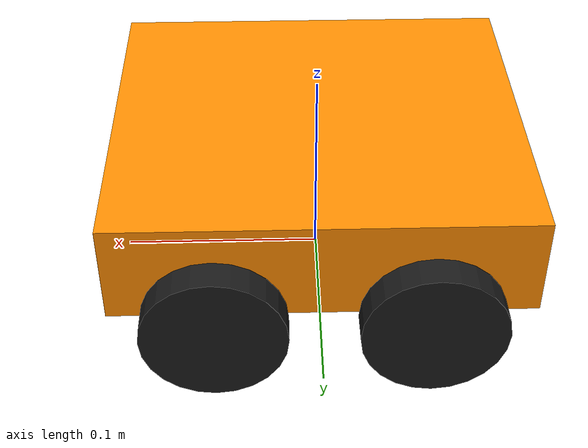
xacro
<?xml version="1.0"?>
<robot xmlns:xacro="http://www.ros.org/wiki/xacro" name="epmc_sample_bot">

    <xacro:macro name="inertial_sphere" params="mass radius *origin">
        <inertial>
            <xacro:insert_block name="origin"/>
            <mass value="${mass}" />
            <inertia ixx="${(2/5) * mass * (radius*radius)}" ixy="0.0" ixz="0.0"
                    iyy="${(2/5) * mass * (radius*radius)}" iyz="0.0"
                    izz="${(2/5) * mass * (radius*radius)}" />
        </inertial>
    </xacro:macro>

    <xacro:macro name="inertial_box" params="mass x y z *origin">
        <inertial>
            <xacro:insert_block name="origin"/>
            <mass value="${mass}" />
            <inertia ixx="${(1/12) * mass * (y*y+z*z)}" ixy="0.0" ixz="0.0"
                    iyy="${(1/12) * mass * (x*x+z*z)}" iyz="0.0"
                    izz="${(1/12) * mass * (x*x+y*y)}" />
        </inertial>
    </xacro:macro>

    <xacro:macro name="inertial_cylinder" params="mass length radius *origin">
        <inertial>
            <xacro:insert_block name="origin"/>
            <mass value="${mass}" />
            <inertia ixx="${(1/12) * mass * (3*radius*radius + length*length)}" ixy="0.0" ixz="0.0"
                    iyy="${(1/12) * mass * (3*radius*radius + length*length)}" iyz="0.0"
                    izz="${(1/2) * mass * (radius*radius)}" />
        </inertial>
    </xacro:macro>

    <material name="orange">
        <color rgba="1 0.55 0 1"/>
    </material>

    <material name="black">
        <color rgba="0.1 0.1 0.1 1"/>
    </material>

    <material name="silver">
        <color rgba="0.6 0.6 0.6 1"/>
    </material>

    <material name="grey">
        <color rgba="0.25 0.25 0.25 1"/>
    </material>

    <xacro:property name="chassis_length" value="0.20"/>
    <xacro:property name="chassis_width" value="0.18"/>
    <xacro:property name="chassis_height" value="0.05"/>
    <xacro:property name="chassis_mass" value="2.0"/>

    <xacro:property name="wheel_seperation" value="0.2"/>
    <xacro:property name="wheel_radius" value="0.034"/>
    <xacro:property name="wheel_width" value="0.015"/>
    <xacro:property name="wheel_mass" value="0.08"/>

    <xacro:property name="wheel_height_offset" value="0.00"/>

    <link name="base_link">
    </link>

    <joint name="chassis_joint" type="fixed">
        <parent link="base_link"/>
        <child link="chassis"/>
        <origin xyz="0 0 ${wheel_radius+wheel_height_offset}"/>
    </joint>

    <link name="chassis">
        <visual>
            <origin xyz="0 0 ${chassis_height/2}" rpy="0 0 0"/>
            <geometry>
                <box size="${chassis_length} ${chassis_width} ${chassis_height}"/>
            </geometry>
          <material name="orange"/>
        </visual>
        <collision>
            <origin xyz="0 0 ${chassis_height/2}" rpy="0 0 0"/>
            <geometry>
                <box size="${chassis_length} ${chassis_width} ${chassis_height}"/>
            </geometry>
        </collision>
        <xacro:inertial_box mass="${chassis_mass}" x="${chassis_length}" y="${chassis_width}" z="${chassis_height}">
            <origin xyz="0 0 ${chassis_height/2}" rpy="0 0 0"/>
        </xacro:inertial_box>
    </link>

    <joint name="front_left_wheel_joint" type="continuous">
        <parent link="chassis"/>
        <child link="front_left_wheel"/>
        <origin xyz="${chassis_length/4} ${wheel_seperation/2} 0" rpy="${-pi/2} 0 0"/>
        <axis xyz="0 0 1"/>
    </joint>

    <link name="front_left_wheel">
    <visual>
        <origin xyz="0 0 0" rpy="0 0 0"/>
        <geometry>
            <cylinder radius="${wheel_radius}" length="${wheel_width}"/>
        </geometry>
        <material name="black"/>
    </visual>
    <collision>
    <origin xyz="0 0 0" rpy="0 0 0"/>
        <geometry>
            <cylinder radius="${wheel_radius}" length="${wheel_width}"/>
        </geometry>
    </collision>
    <xacro:inertial_cylinder mass="${wheel_mass}" length="${wheel_width}" radius="${wheel_radius}">
        <origin xyz="0 0 0" rpy="0 0 0"/>
    </xacro:inertial_cylinder>
    </link>

    <joint name="front_right_wheel_joint" type="continuous">
        <parent link="chassis"/>
        <child link="front_right_wheel"/>
        <origin xyz="${chassis_length/4} ${-wheel_seperation/2} 0" rpy="${-pi/2} 0 0"/>
        <axis xyz="0 0 1"/>
    </joint>

    <link name="front_right_wheel">
    <visual>
        <origin xyz="0 0 0" rpy="0 0 0"/>
        <geometry>
            <cylinder radius="${wheel_radius}" length="${wheel_width}"/>
        </geometry>
        <material name="black"/>
    </visual>
    <collision>
    <origin xyz="0 0 0" rpy="0 0 0"/>
        <geometry>
            <cylinder radius="${wheel_radius}" length="${wheel_width}"/>
        </geometry>
    </collision>
    <xacro:inertial_cylinder mass="${wheel_mass}" length="${wheel_width}" radius="${wheel_radius}">
        <origin xyz="0 0 0" rpy="0 0 0"/>
    </xacro:inertial_cylinder>
    </link>

    <joint name="rear_left_wheel_joint" type="continuous">
        <parent link="chassis"/>
        <child link="rear_left_wheel"/>
        <origin xyz="${-chassis_length/4} ${wheel_seperation/2} 0" rpy="${-pi/2} 0 0"/>
        <axis xyz="0 0 1"/>
    </joint>

    <link name="rear_left_wheel">
    <visual>
        <origin xyz="0 0 0" rpy="0 0 0"/>
        <geometry>
            <cylinder radius="${wheel_radius}" length="${wheel_width}"/>
        </geometry>
        <material name="black"/>
    </visual>
    <collision>
    <origin xyz="0 0 0" rpy="0 0 0"/>
        <geometry>
            <cylinder radius="${wheel_radius}" length="${wheel_width}"/>
        </geometry>
    </collision>
    <xacro:inertial_cylinder mass="${wheel_mass}" length="${wheel_width}" radius="${wheel_radius}">
        <origin xyz="0 0 0" rpy="0 0 0"/>
    </xacro:inertial_cylinder>
    </link>

    <joint name="rear_right_wheel_joint" type="continuous">
        <parent link="chassis"/>
        <child link="rear_right_wheel"/>
        <origin xyz="${-chassis_length/4} ${-wheel_seperation/2} 0" rpy="${-pi/2} 0 0"/>
        <axis xyz="0 0 1"/>
    </joint>

    <link name="rear_right_wheel">
    <visual>
        <origin xyz="0 0 0" rpy="0 0 0"/>
        <geometry>
            <cylinder radius="${wheel_radius}" length="${wheel_width}"/>
        </geometry>
        <material name="black"/>
    </visual>
    <collision>
    <origin xyz="0 0 0" rpy="0 0 0"/>
        <geometry>
            <cylinder radius="${wheel_radius}" length="${wheel_width}"/>
        </geometry>
    </collision>
    <xacro:inertial_cylinder mass="${wheel_mass}" length="${wheel_width}" radius="${wheel_radius}">
        <origin xyz="0 0 0" rpy="0 0 0"/>
    </xacro:inertial_cylinder>
    </link>

    <xacro:include filename="$(find epmc_sample_bot_description)/urdf/ros2_control.xacro" />

</robot>
